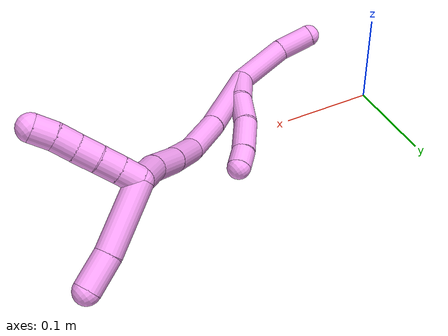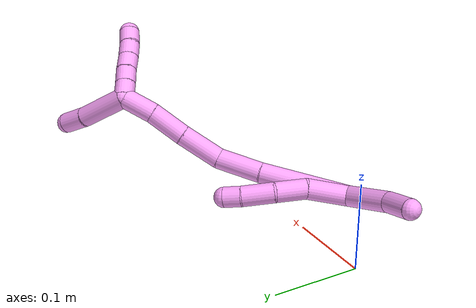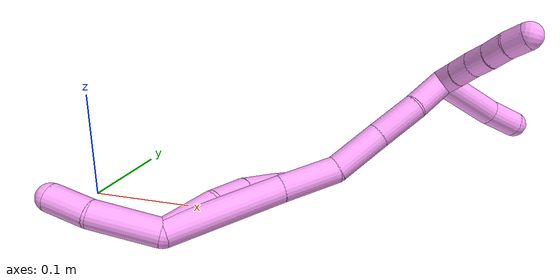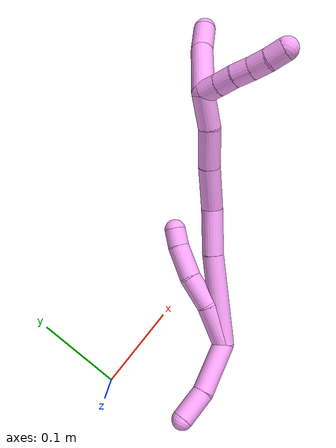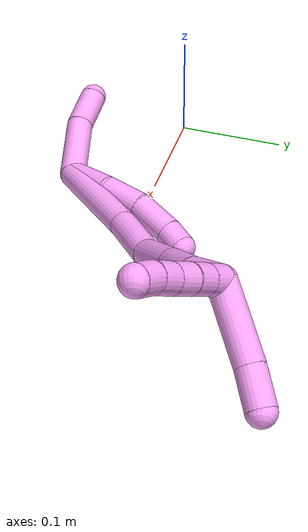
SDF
<sdf version="1.7">
 <world name="default">
  <model name="4">
   <static>0</static>
   <link name="4">
    <collision name="collision-cylinder-e_1_2_8">
     <pose>0.018594 0.009807 0.014756 -0.586577 0.809503 -0.257325</pose>
     <geometry><cylinder><radius>0.0125</radius><length>0.051367</length></cylinder></geometry>
     <surface>
      <friction><ode><mu>1.16</mu><mu2>1.16</mu2><slip1>0</slip1><slip2>0</slip2></ode></friction>
      <contact><ode><kp>1e+06</kp><kd>1</kd><max_vel>0</max_vel><min_depth>0.001</min_depth></ode></contact>
     </surface>
    </collision>
    <visual name="visual-cylinder-e_1_2_8">
     <pose>0.018594 0.009807 0.014756 -0.586577 0.809503 -0.257325</pose>
     <geometry><cylinder><radius>0.0125</radius><length>0.051367</length></cylinder></geometry>
     <material><ambient>1 0.65098 0.996078 1</ambient></material>
    </visual>
    <collision name="collision-cylinder-e_2_8_9">
     <pose>0.05313 0.022083 0.039565 -0.240823 0.994944 -0.13122</pose>
     <geometry><cylinder><radius>0.0125</radius><length>0.038018</length></cylinder></geometry>
     <surface>
      <friction><ode><mu>1.16</mu><mu2>1.16</mu2><slip1>0</slip1><slip2>0</slip2></ode></friction>
      <contact><ode><kp>1e+06</kp><kd>1</kd><max_vel>0</max_vel><min_depth>0.001</min_depth></ode></contact>
     </surface>
    </collision>
    <visual name="visual-cylinder-e_2_8_9">
     <pose>0.05313 0.022083 0.039565 -0.240823 0.994944 -0.13122</pose>
     <geometry><cylinder><radius>0.0125</radius><length>0.038018</length></cylinder></geometry>
     <material><ambient>1 0.65098 0.996078 1</ambient></material>
    </visual>
    <collision name="collision-cylinder-e_3_9_10">
     <pose>0.083072 0.025742 0.06334 -0.086495 0.793465 -0.036255</pose>
     <geometry><cylinder><radius>0.0125</radius><length>0.039276</length></cylinder></geometry>
     <surface>
      <friction><ode><mu>1.16</mu><mu2>1.16</mu2><slip1>0</slip1><slip2>0</slip2></ode></friction>
      <contact><ode><kp>1e+06</kp><kd>1</kd><max_vel>0</max_vel><min_depth>0.001</min_depth></ode></contact>
     </surface>
    </collision>
    <visual name="visual-cylinder-e_3_9_10">
     <pose>0.083072 0.025742 0.06334 -0.086495 0.793465 -0.036255</pose>
     <geometry><cylinder><radius>0.0125</radius><length>0.039276</length></cylinder></geometry>
     <material><ambient>1 0.65098 0.996078 1</ambient></material>
    </visual>
    <collision name="collision-cylinder-e_4_10_6">
     <pose>0.103437 0.027799 0.08558 -0.101485 0.639479 -0.033627</pose>
     <geometry><cylinder><radius>0.0125</radius><length>0.021338</length></cylinder></geometry>
     <surface>
      <friction><ode><mu>1.16</mu><mu2>1.16</mu2><slip1>0</slip1><slip2>0</slip2></ode></friction>
      <contact><ode><kp>1e+06</kp><kd>1</kd><max_vel>0</max_vel><min_depth>0.001</min_depth></ode></contact>
     </surface>
    </collision>
    <visual name="visual-cylinder-e_4_10_6">
     <pose>0.103437 0.027799 0.08558 -0.101485 0.639479 -0.033627</pose>
     <geometry><cylinder><radius>0.0125</radius><length>0.021338</length></cylinder></geometry>
     <material><ambient>1 0.65098 0.996078 1</ambient></material>
    </visual>
    <collision name="collision-cylinder-e_1_2_11">
     <pose>-0.000159 -0.000381 -0.030727 3.12919 -0.005169 -0.789825</pose>
     <geometry><cylinder><radius>0.0125</radius><length>0.06146</length></cylinder></geometry>
     <surface>
      <friction><ode><mu>1.16</mu><mu2>1.16</mu2><slip1>0</slip1><slip2>0</slip2></ode></friction>
      <contact><ode><kp>1e+06</kp><kd>1</kd><max_vel>0</max_vel><min_depth>0.001</min_depth></ode></contact>
     </surface>
    </collision>
    <visual name="visual-cylinder-e_1_2_11">
     <pose>-0.000159 -0.000381 -0.030727 3.12919 -0.005169 -0.789825</pose>
     <geometry><cylinder><radius>0.0125</radius><length>0.06146</length></cylinder></geometry>
     <material><ambient>1 0.65098 0.996078 1</ambient></material>
    </visual>
    <collision name="collision-cylinder-e_2_11_5">
     <pose>0.00438 -0.00094 -0.080142 3.13209 0.246243 3.06485</pose>
     <geometry><cylinder><radius>0.0125</radius><length>0.03854</length></cylinder></geometry>
     <surface>
      <friction><ode><mu>1.16</mu><mu2>1.16</mu2><slip1>0</slip1><slip2>0</slip2></ode></friction>
      <contact><ode><kp>1e+06</kp><kd>1</kd><max_vel>0</max_vel><min_depth>0.001</min_depth></ode></contact>
     </surface>
    </collision>
    <visual name="visual-cylinder-e_2_11_5">
     <pose>0.00438 -0.00094 -0.080142 3.13209 0.246243 3.06485</pose>
     <geometry><cylinder><radius>0.0125</radius><length>0.03854</length></cylinder></geometry>
     <material><ambient>1 0.65098 0.996078 1</ambient></material>
    </visual>
    <collision name="collision-cylinder-e_1_2_12">
     <pose>0.028434 0.020919 0.040957 -0.472206 0.553737 -0.136523</pose>
     <geometry><cylinder><radius>0.0125</radius><length>0.10814</length></cylinder></geometry>
     <surface>
      <friction><ode><mu>1.16</mu><mu2>1.16</mu2><slip1>0</slip1><slip2>0</slip2></ode></friction>
      <contact><ode><kp>1e+06</kp><kd>1</kd><max_vel>0</max_vel><min_depth>0.001</min_depth></ode></contact>
     </surface>
    </collision>
    <visual name="visual-cylinder-e_1_2_12">
     <pose>0.028434 0.020919 0.040957 -0.472206 0.553737 -0.136523</pose>
     <geometry><cylinder><radius>0.0125</radius><length>0.10814</length></cylinder></geometry>
     <material><ambient>1 0.65098 0.996078 1</ambient></material>
    </visual>
    <collision name="collision-cylinder-e_2_12_13">
     <pose>0.069006 0.053346 0.103515 -0.489517 0.460395 -0.116933</pose>
     <geometry><cylinder><radius>0.0125</radius><length>0.05464</length></cylinder></geometry>
     <surface>
      <friction><ode><mu>1.16</mu><mu2>1.16</mu2><slip1>0</slip1><slip2>0</slip2></ode></friction>
      <contact><ode><kp>1e+06</kp><kd>1</kd><max_vel>0</max_vel><min_depth>0.001</min_depth></ode></contact>
     </surface>
    </collision>
    <visual name="visual-cylinder-e_2_12_13">
     <pose>0.069006 0.053346 0.103515 -0.489517 0.460395 -0.116933</pose>
     <geometry><cylinder><radius>0.0125</radius><length>0.05464</length></cylinder></geometry>
     <material><ambient>1 0.65098 0.996078 1</ambient></material>
    </visual>
    <collision name="collision-cylinder-e_3_13_14">
     <pose>0.092642 0.082574 0.140223 -0.864854 0.458637 -0.214652</pose>
     <geometry><cylinder><radius>0.0125</radius><length>0.051939</length></cylinder></geometry>
     <surface>
      <friction><ode><mu>1.16</mu><mu2>1.16</mu2><slip1>0</slip1><slip2>0</slip2></ode></friction>
      <contact><ode><kp>1e+06</kp><kd>1</kd><max_vel>0</max_vel><min_depth>0.001</min_depth></ode></contact>
     </surface>
    </collision>
    <visual name="visual-cylinder-e_3_13_14">
     <pose>0.092642 0.082574 0.140223 -0.864854 0.458637 -0.214652</pose>
     <geometry><cylinder><radius>0.0125</radius><length>0.051939</length></cylinder></geometry>
     <material><ambient>1 0.65098 0.996078 1</ambient></material>
    </visual>
    <collision name="collision-cylinder-e_4_14_15">
     <pose>0.112834 0.116475 0.168846 -0.874883 0.391171 -0.184776</pose>
     <geometry><cylinder><radius>0.0125</radius><length>0.045612</length></cylinder></geometry>
     <surface>
      <friction><ode><mu>1.16</mu><mu2>1.16</mu2><slip1>0</slip1><slip2>0</slip2></ode></friction>
      <contact><ode><kp>1e+06</kp><kd>1</kd><max_vel>0</max_vel><min_depth>0.001</min_depth></ode></contact>
     </surface>
    </collision>
    <visual name="visual-cylinder-e_4_14_15">
     <pose>0.112834 0.116475 0.168846 -0.874883 0.391171 -0.184776</pose>
     <geometry><cylinder><radius>0.0125</radius><length>0.045612</length></cylinder></geometry>
     <material><ambient>1 0.65098 0.996078 1</ambient></material>
    </visual>
    <collision name="collision-cylinder-e_5_15_1">
     <pose>0.132276 0.145505 0.192985 -0.879963 0.572584 -0.275409</pose>
     <geometry><cylinder><radius>0.0125</radius><length>0.039669</length></cylinder></geometry>
     <surface>
      <friction><ode><mu>1.16</mu><mu2>1.16</mu2><slip1>0</slip1><slip2>0</slip2></ode></friction>
      <contact><ode><kp>1e+06</kp><kd>1</kd><max_vel>0</max_vel><min_depth>0.001</min_depth></ode></contact>
     </surface>
    </collision>
    <visual name="visual-cylinder-e_5_15_1">
     <pose>0.132276 0.145505 0.192985 -0.879963 0.572584 -0.275409</pose>
     <geometry><cylinder><radius>0.0125</radius><length>0.039669</length></cylinder></geometry>
     <material><ambient>1 0.65098 0.996078 1</ambient></material>
    </visual>
    <collision name="collision-cylinder-e_1_1_16">
     <pose>0.15504 0.148526 0.233057 0.322082 0.36931 0.060666</pose>
     <geometry><cylinder><radius>0.0125</radius><length>0.066583</length></cylinder></geometry>
     <surface>
      <friction><ode><mu>1.16</mu><mu2>1.16</mu2><slip1>0</slip1><slip2>0</slip2></ode></friction>
      <contact><ode><kp>1e+06</kp><kd>1</kd><max_vel>0</max_vel><min_depth>0.001</min_depth></ode></contact>
     </surface>
    </collision>
    <visual name="visual-cylinder-e_1_1_16">
     <pose>0.15504 0.148526 0.233057 0.322082 0.36931 0.060666</pose>
     <geometry><cylinder><radius>0.0125</radius><length>0.066583</length></cylinder></geometry>
     <material><ambient>1 0.65098 0.996078 1</ambient></material>
    </visual>
    <collision name="collision-cylinder-e_2_16_4">
     <pose>0.171725 0.135359 0.2782 0.209674 0.283138 0.029991</pose>
     <geometry><cylinder><radius>0.0125</radius><length>0.033417</length></cylinder></geometry>
     <surface>
      <friction><ode><mu>1.16</mu><mu2>1.16</mu2><slip1>0</slip1><slip2>0</slip2></ode></friction>
      <contact><ode><kp>1e+06</kp><kd>1</kd><max_vel>0</max_vel><min_depth>0.001</min_depth></ode></contact>
     </surface>
    </collision>
    <visual name="visual-cylinder-e_2_16_4">
     <pose>0.171725 0.135359 0.2782 0.209674 0.283138 0.029991</pose>
     <geometry><cylinder><radius>0.0125</radius><length>0.033417</length></cylinder></geometry>
     <material><ambient>1 0.65098 0.996078 1</ambient></material>
    </visual>
    <collision name="collision-cylinder-e_1_1_17">
     <pose>0.136976 0.16516 0.207744 -1.02466 -0.649257 0.374124</pose>
     <geometry><cylinder><radius>0.0125</radius><length>0.02</length></cylinder></geometry>
     <surface>
      <friction><ode><mu>1.16</mu><mu2>1.16</mu2><slip1>0</slip1><slip2>0</slip2></ode></friction>
      <contact><ode><kp>1e+06</kp><kd>1</kd><max_vel>0</max_vel><min_depth>0.001</min_depth></ode></contact>
     </surface>
    </collision>
    <visual name="visual-cylinder-e_1_1_17">
     <pose>0.136976 0.16516 0.207744 -1.02466 -0.649257 0.374124</pose>
     <geometry><cylinder><radius>0.0125</radius><length>0.02</length></cylinder></geometry>
     <material><ambient>1 0.65098 0.996078 1</ambient></material>
    </visual>
    <collision name="collision-cylinder-e_2_17_18">
     <pose>0.125185 0.178926 0.216189 -1.01651 -0.612062 0.348452</pose>
     <geometry><cylinder><radius>0.0125</radius><length>0.02</length></cylinder></geometry>
     <surface>
      <friction><ode><mu>1.16</mu><mu2>1.16</mu2><slip1>0</slip1><slip2>0</slip2></ode></friction>
      <contact><ode><kp>1e+06</kp><kd>1</kd><max_vel>0</max_vel><min_depth>0.001</min_depth></ode></contact>
     </surface>
    </collision>
    <visual name="visual-cylinder-e_2_17_18">
     <pose>0.125185 0.178926 0.216189 -1.01651 -0.612062 0.348452</pose>
     <geometry><cylinder><radius>0.0125</radius><length>0.02</length></cylinder></geometry>
     <material><ambient>1 0.65098 0.996078 1</ambient></material>
    </visual>
    <collision name="collision-cylinder-e_3_18_19">
     <pose>0.112949 0.192196 0.224746 -0.97814 -0.706294 0.387413</pose>
     <geometry><cylinder><radius>0.0125</radius><length>0.02</length></cylinder></geometry>
     <surface>
      <friction><ode><mu>1.16</mu><mu2>1.16</mu2><slip1>0</slip1><slip2>0</slip2></ode></friction>
      <contact><ode><kp>1e+06</kp><kd>1</kd><max_vel>0</max_vel><min_depth>0.001</min_depth></ode></contact>
     </surface>
    </collision>
    <visual name="visual-cylinder-e_3_18_19">
     <pose>0.112949 0.192196 0.224746 -0.97814 -0.706294 0.387413</pose>
     <geometry><cylinder><radius>0.0125</radius><length>0.02</length></cylinder></geometry>
     <material><ambient>1 0.65098 0.996078 1</ambient></material>
    </visual>
    <collision name="collision-cylinder-e_4_19_20">
     <pose>0.100498 0.205381 0.233142 -1.0281 -0.638688 0.369191</pose>
     <geometry><cylinder><radius>0.0125</radius><length>0.02</length></cylinder></geometry>
     <surface>
      <friction><ode><mu>1.16</mu><mu2>1.16</mu2><slip1>0</slip1><slip2>0</slip2></ode></friction>
      <contact><ode><kp>1e+06</kp><kd>1</kd><max_vel>0</max_vel><min_depth>0.001</min_depth></ode></contact>
     </surface>
    </collision>
    <visual name="visual-cylinder-e_4_19_20">
     <pose>0.100498 0.205381 0.233142 -1.0281 -0.638688 0.369191</pose>
     <geometry><cylinder><radius>0.0125</radius><length>0.02</length></cylinder></geometry>
     <material><ambient>1 0.65098 0.996078 1</ambient></material>
    </visual>
    <collision name="collision-cylinder-e_5_20_3">
     <pose>0.089048 0.218632 0.242695 -0.867474 -0.580999 0.275175</pose>
     <geometry><cylinder><radius>0.0125</radius><length>0.02</length></cylinder></geometry>
     <surface>
      <friction><ode><mu>1.16</mu><mu2>1.16</mu2><slip1>0</slip1><slip2>0</slip2></ode></friction>
      <contact><ode><kp>1e+06</kp><kd>1</kd><max_vel>0</max_vel><min_depth>0.001</min_depth></ode></contact>
     </surface>
    </collision>
    <visual name="visual-cylinder-e_5_20_3">
     <pose>0.089048 0.218632 0.242695 -0.867474 -0.580999 0.275175</pose>
     <geometry><cylinder><radius>0.0125</radius><length>0.02</length></cylinder></geometry>
     <material><ambient>1 0.65098 0.996078 1</ambient></material>
    </visual>
    <collision name="collision-sphere-3">
     <pose>0.083559 0.225007 0.248101 0 -0 0</pose>
     <geometry><sphere><radius>0.0125</radius></sphere></geometry>
     <surface>
      <friction><ode><mu>1.16</mu><mu2>1.16</mu2><slip1>0</slip1><slip2>0</slip2></ode></friction>
      <contact><ode><kp>1e+06</kp><kd>1</kd><max_vel>0</max_vel><min_depth>0.001</min_depth></ode></contact>
     </surface>
    </collision>
    <visual name="visual-sphere-3">
     <pose>0.083559 0.225007 0.248101 0 -0 0</pose>
     <geometry><sphere><radius>0.0125</radius></sphere></geometry>
     <material><ambient>1 0.65098 0.996078 1</ambient></material>
    </visual>
    <collision name="collision-sphere-20">
     <pose>0.094536 0.212256 0.237289 0 -0 0</pose>
     <geometry><sphere><radius>0.0125</radius></sphere></geometry>
     <surface>
      <friction><ode><mu>1.16</mu><mu2>1.16</mu2><slip1>0</slip1><slip2>0</slip2></ode></friction>
      <contact><ode><kp>1e+06</kp><kd>1</kd><max_vel>0</max_vel><min_depth>0.001</min_depth></ode></contact>
     </surface>
    </collision>
    <visual name="visual-sphere-20">
     <pose>0.094536 0.212256 0.237289 0 -0 0</pose>
     <geometry><sphere><radius>0.0125</radius></sphere></geometry>
     <material><ambient>1 0.65098 0.996078 1</ambient></material>
    </visual>
    <collision name="collision-sphere-19">
     <pose>0.106459 0.198506 0.228996 0 -0 0</pose>
     <geometry><sphere><radius>0.0125</radius></sphere></geometry>
     <surface>
      <friction><ode><mu>1.16</mu><mu2>1.16</mu2><slip1>0</slip1><slip2>0</slip2></ode></friction>
      <contact><ode><kp>1e+06</kp><kd>1</kd><max_vel>0</max_vel><min_depth>0.001</min_depth></ode></contact>
     </surface>
    </collision>
    <visual name="visual-sphere-19">
     <pose>0.106459 0.198506 0.228996 0 -0 0</pose>
     <geometry><sphere><radius>0.0125</radius></sphere></geometry>
     <material><ambient>1 0.65098 0.996078 1</ambient></material>
    </visual>
    <collision name="collision-sphere-11">
     <pose>-0.000318 -0.000762 -0.061454 0 -0 0</pose>
     <geometry><sphere><radius>0.0125</radius></sphere></geometry>
     <surface>
      <friction><ode><mu>1.16</mu><mu2>1.16</mu2><slip1>0</slip1><slip2>0</slip2></ode></friction>
      <contact><ode><kp>1e+06</kp><kd>1</kd><max_vel>0</max_vel><min_depth>0.001</min_depth></ode></contact>
     </surface>
    </collision>
    <visual name="visual-sphere-11">
     <pose>-0.000318 -0.000762 -0.061454 0 -0 0</pose>
     <geometry><sphere><radius>0.0125</radius></sphere></geometry>
     <material><ambient>1 0.65098 0.996078 1</ambient></material>
    </visual>
    <collision name="collision-sphere-6">
     <pose>0.109804 0.028666 0.094097 0 -0 0</pose>
     <geometry><sphere><radius>0.0125</radius></sphere></geometry>
     <surface>
      <friction><ode><mu>1.16</mu><mu2>1.16</mu2><slip1>0</slip1><slip2>0</slip2></ode></friction>
      <contact><ode><kp>1e+06</kp><kd>1</kd><max_vel>0</max_vel><min_depth>0.001</min_depth></ode></contact>
     </surface>
    </collision>
    <visual name="visual-sphere-6">
     <pose>0.109804 0.028666 0.094097 0 -0 0</pose>
     <geometry><sphere><radius>0.0125</radius></sphere></geometry>
     <material><ambient>1 0.65098 0.996078 1</ambient></material>
    </visual>
    <collision name="collision-sphere-10">
     <pose>0.097069 0.026932 0.077063 0 -0 0</pose>
     <geometry><sphere><radius>0.0125</radius></sphere></geometry>
     <surface>
      <friction><ode><mu>1.16</mu><mu2>1.16</mu2><slip1>0</slip1><slip2>0</slip2></ode></friction>
      <contact><ode><kp>1e+06</kp><kd>1</kd><max_vel>0</max_vel><min_depth>0.001</min_depth></ode></contact>
     </surface>
    </collision>
    <visual name="visual-sphere-10">
     <pose>0.097069 0.026932 0.077063 0 -0 0</pose>
     <geometry><sphere><radius>0.0125</radius></sphere></geometry>
     <material><ambient>1 0.65098 0.996078 1</ambient></material>
    </visual>
    <collision name="collision-sphere-9">
     <pose>0.069074 0.024552 0.049618 0 -0 0</pose>
     <geometry><sphere><radius>0.0125</radius></sphere></geometry>
     <surface>
      <friction><ode><mu>1.16</mu><mu2>1.16</mu2><slip1>0</slip1><slip2>0</slip2></ode></friction>
      <contact><ode><kp>1e+06</kp><kd>1</kd><max_vel>0</max_vel><min_depth>0.001</min_depth></ode></contact>
     </surface>
    </collision>
    <visual name="visual-sphere-9">
     <pose>0.069074 0.024552 0.049618 0 -0 0</pose>
     <geometry><sphere><radius>0.0125</radius></sphere></geometry>
     <material><ambient>1 0.65098 0.996078 1</ambient></material>
    </visual>
    <collision name="collision-sphere-2">
     <geometry><sphere><radius>0.0125</radius></sphere></geometry>
     <surface>
      <friction><ode><mu>1.16</mu><mu2>1.16</mu2><slip1>0</slip1><slip2>0</slip2></ode></friction>
      <contact><ode><kp>1e+06</kp><kd>1</kd><max_vel>0</max_vel><min_depth>0.001</min_depth></ode></contact>
     </surface>
    </collision>
    <visual name="visual-sphere-2">
     <geometry><sphere><radius>0.0125</radius></sphere></geometry>
     <material><ambient>1 0.65098 0.996078 1</ambient></material>
    </visual>
    <collision name="collision-sphere-8">
     <pose>0.037187 0.019614 0.029513 0 -0 0</pose>
     <geometry><sphere><radius>0.0125</radius></sphere></geometry>
     <surface>
      <friction><ode><mu>1.16</mu><mu2>1.16</mu2><slip1>0</slip1><slip2>0</slip2></ode></friction>
      <contact><ode><kp>1e+06</kp><kd>1</kd><max_vel>0</max_vel><min_depth>0.001</min_depth></ode></contact>
     </surface>
    </collision>
    <visual name="visual-sphere-8">
     <pose>0.037187 0.019614 0.029513 0 -0 0</pose>
     <geometry><sphere><radius>0.0125</radius></sphere></geometry>
     <material><ambient>1 0.65098 0.996078 1</ambient></material>
    </visual>
    <collision name="collision-sphere-5">
     <pose>0.009077 -0.001117 -0.09883 0 -0 0</pose>
     <geometry><sphere><radius>0.0125</radius></sphere></geometry>
     <surface>
      <friction><ode><mu>1.16</mu><mu2>1.16</mu2><slip1>0</slip1><slip2>0</slip2></ode></friction>
      <contact><ode><kp>1e+06</kp><kd>1</kd><max_vel>0</max_vel><min_depth>0.001</min_depth></ode></contact>
     </surface>
    </collision>
    <visual name="visual-sphere-5">
     <pose>0.009077 -0.001117 -0.09883 0 -0 0</pose>
     <geometry><sphere><radius>0.0125</radius></sphere></geometry>
     <material><ambient>1 0.65098 0.996078 1</ambient></material>
    </visual>
    <collision name="collision-sphere-12">
     <pose>0.056867 0.041837 0.081914 0 -0 0</pose>
     <geometry><sphere><radius>0.0125</radius></sphere></geometry>
     <surface>
      <friction><ode><mu>1.16</mu><mu2>1.16</mu2><slip1>0</slip1><slip2>0</slip2></ode></friction>
      <contact><ode><kp>1e+06</kp><kd>1</kd><max_vel>0</max_vel><min_depth>0.001</min_depth></ode></contact>
     </surface>
    </collision>
    <visual name="visual-sphere-12">
     <pose>0.056867 0.041837 0.081914 0 -0 0</pose>
     <geometry><sphere><radius>0.0125</radius></sphere></geometry>
     <material><ambient>1 0.65098 0.996078 1</ambient></material>
    </visual>
    <collision name="collision-sphere-13">
     <pose>0.081144 0.064854 0.125117 0 -0 0</pose>
     <geometry><sphere><radius>0.0125</radius></sphere></geometry>
     <surface>
      <friction><ode><mu>1.16</mu><mu2>1.16</mu2><slip1>0</slip1><slip2>0</slip2></ode></friction>
      <contact><ode><kp>1e+06</kp><kd>1</kd><max_vel>0</max_vel><min_depth>0.001</min_depth></ode></contact>
     </surface>
    </collision>
    <visual name="visual-sphere-13">
     <pose>0.081144 0.064854 0.125117 0 -0 0</pose>
     <geometry><sphere><radius>0.0125</radius></sphere></geometry>
     <material><ambient>1 0.65098 0.996078 1</ambient></material>
    </visual>
    <collision name="collision-sphere-14">
     <pose>0.104139 0.100295 0.15533 0 -0 0</pose>
     <geometry><sphere><radius>0.0125</radius></sphere></geometry>
     <surface>
      <friction><ode><mu>1.16</mu><mu2>1.16</mu2><slip1>0</slip1><slip2>0</slip2></ode></friction>
      <contact><ode><kp>1e+06</kp><kd>1</kd><max_vel>0</max_vel><min_depth>0.001</min_depth></ode></contact>
     </surface>
    </collision>
    <visual name="visual-sphere-14">
     <pose>0.104139 0.100295 0.15533 0 -0 0</pose>
     <geometry><sphere><radius>0.0125</radius></sphere></geometry>
     <material><ambient>1 0.65098 0.996078 1</ambient></material>
    </visual>
    <collision name="collision-sphere-15">
     <pose>0.121529 0.132656 0.182362 0 -0 0</pose>
     <geometry><sphere><radius>0.0125</radius></sphere></geometry>
     <surface>
      <friction><ode><mu>1.16</mu><mu2>1.16</mu2><slip1>0</slip1><slip2>0</slip2></ode></friction>
      <contact><ode><kp>1e+06</kp><kd>1</kd><max_vel>0</max_vel><min_depth>0.001</min_depth></ode></contact>
     </surface>
    </collision>
    <visual name="visual-sphere-15">
     <pose>0.121529 0.132656 0.182362 0 -0 0</pose>
     <geometry><sphere><radius>0.0125</radius></sphere></geometry>
     <material><ambient>1 0.65098 0.996078 1</ambient></material>
    </visual>
    <collision name="collision-sphere-1">
     <pose>0.143022 0.158353 0.203607 0 -0 0</pose>
     <geometry><sphere><radius>0.0125</radius></sphere></geometry>
     <surface>
      <friction><ode><mu>1.16</mu><mu2>1.16</mu2><slip1>0</slip1><slip2>0</slip2></ode></friction>
      <contact><ode><kp>1e+06</kp><kd>1</kd><max_vel>0</max_vel><min_depth>0.001</min_depth></ode></contact>
     </surface>
    </collision>
    <visual name="visual-sphere-1">
     <pose>0.143022 0.158353 0.203607 0 -0 0</pose>
     <geometry><sphere><radius>0.0125</radius></sphere></geometry>
     <material><ambient>1 0.65098 0.996078 1</ambient></material>
    </visual>
    <collision name="collision-sphere-18">
     <pose>0.119439 0.185885 0.220497 0 -0 0</pose>
     <geometry><sphere><radius>0.0125</radius></sphere></geometry>
     <surface>
      <friction><ode><mu>1.16</mu><mu2>1.16</mu2><slip1>0</slip1><slip2>0</slip2></ode></friction>
      <contact><ode><kp>1e+06</kp><kd>1</kd><max_vel>0</max_vel><min_depth>0.001</min_depth></ode></contact>
     </surface>
    </collision>
    <visual name="visual-sphere-18">
     <pose>0.119439 0.185885 0.220497 0 -0 0</pose>
     <geometry><sphere><radius>0.0125</radius></sphere></geometry>
     <material><ambient>1 0.65098 0.996078 1</ambient></material>
    </visual>
    <collision name="collision-sphere-16">
     <pose>0.167057 0.138698 0.262508 0 -0 0</pose>
     <geometry><sphere><radius>0.0125</radius></sphere></geometry>
     <surface>
      <friction><ode><mu>1.16</mu><mu2>1.16</mu2><slip1>0</slip1><slip2>0</slip2></ode></friction>
      <contact><ode><kp>1e+06</kp><kd>1</kd><max_vel>0</max_vel><min_depth>0.001</min_depth></ode></contact>
     </surface>
    </collision>
    <visual name="visual-sphere-16">
     <pose>0.167057 0.138698 0.262508 0 -0 0</pose>
     <geometry><sphere><radius>0.0125</radius></sphere></geometry>
     <material><ambient>1 0.65098 0.996078 1</ambient></material>
    </visual>
    <collision name="collision-sphere-4">
     <pose>0.176393 0.13202 0.293892 0 -0 0</pose>
     <geometry><sphere><radius>0.0125</radius></sphere></geometry>
     <surface>
      <friction><ode><mu>1.16</mu><mu2>1.16</mu2><slip1>0</slip1><slip2>0</slip2></ode></friction>
      <contact><ode><kp>1e+06</kp><kd>1</kd><max_vel>0</max_vel><min_depth>0.001</min_depth></ode></contact>
     </surface>
    </collision>
    <visual name="visual-sphere-4">
     <pose>0.176393 0.13202 0.293892 0 -0 0</pose>
     <geometry><sphere><radius>0.0125</radius></sphere></geometry>
     <material><ambient>1 0.65098 0.996078 1</ambient></material>
    </visual>
    <collision name="collision-sphere-17">
     <pose>0.13093 0.171967 0.211881 0 -0 0</pose>
     <geometry><sphere><radius>0.0125</radius></sphere></geometry>
     <surface>
      <friction><ode><mu>1.16</mu><mu2>1.16</mu2><slip1>0</slip1><slip2>0</slip2></ode></friction>
      <contact><ode><kp>1e+06</kp><kd>1</kd><max_vel>0</max_vel><min_depth>0.001</min_depth></ode></contact>
     </surface>
    </collision>
    <visual name="visual-sphere-17">
     <pose>0.13093 0.171967 0.211881 0 -0 0</pose>
     <geometry><sphere><radius>0.0125</radius></sphere></geometry>
     <material><ambient>1 0.65098 0.996078 1</ambient></material>
    </visual>
    <inertial>
     <pose>0.077346 0.076076 0.108838 0 -0 0</pose>
     <mass>0.75</mass>
     <inertia>
      <ixx>0.000179</ixx>
      <ixy>0</ixy>
      <ixz>0</ixz>
      <iyy>0.000171</iyy>
      <iyz>0</iyz>
      <izz>-0.000152</izz>
     </inertia>
    </inertial>
   </link>
   <pose>0.118473 -0.076467 0.011973 1.83494 0.031487 1.805</pose>
  </model>
 </world>
</sdf>
